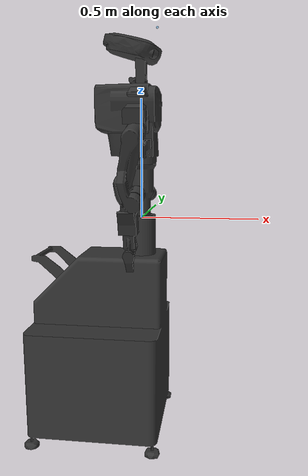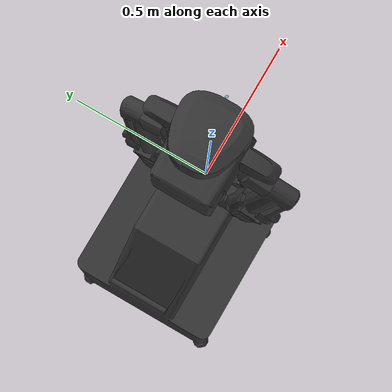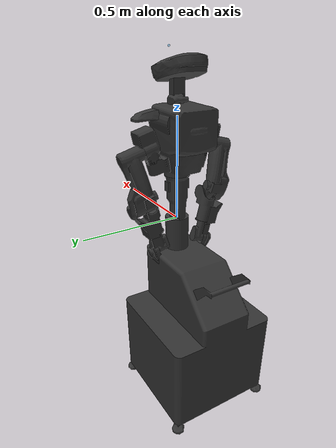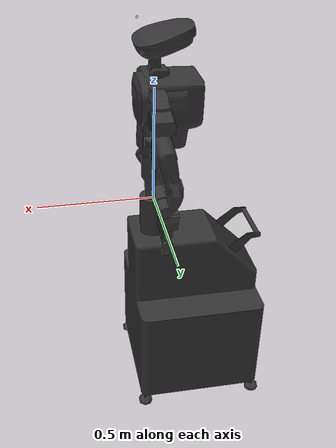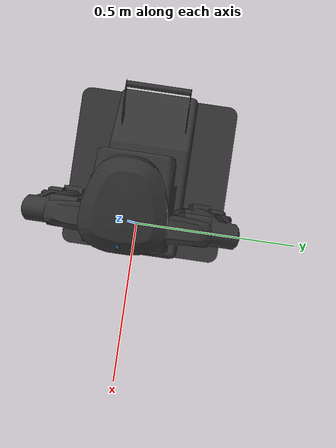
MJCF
<?xml version='1.0' encoding='UTF-8'?>
<mujoco model="NextageOpen">
  <compiler angle="radian" meshdir="meshes" autolimits="true"/>
  <option timestep="0.002" gravity="0 0 -9.81" integrator="implicitfast"/>
  <default>
    <joint limited="true" damping="0.2" armature="0.01"/>
    <geom rgba="0.25 0.25 0.25 1" friction="0.8 0.1 0.1" margin="0.001"/>
    <default class="visual">
      <geom contype="0" conaffinity="0" density="0" group="2" rgba="0.2 0.2 0.2 1"/>
    </default>
    <default class="collision">
      <geom group="3" rgba="0.7 0.7 0.7 0.15"/>
    </default>
  </default>
  <asset>
    <material name="body_white" rgba="0.95 0.95 0.95 1"/>
    <material name="body_black" rgba="0.08 0.08 0.08 1"/>
    <material name="body_gray" rgba="0.55 0.55 0.55 1"/>
    <material name="visor_cyan" rgba="0.49 1 1 1"/>
    <mesh name="CHEST_JOINT0_Link_mesh" file="CHEST_JOINT0_Link_mesh.stl"/>
    <mesh name="HEAD_JOINT0_Link_mesh" file="HEAD_JOINT0_Link_mesh.stl"/>
    <mesh name="HEAD_JOINT1_Link_mesh" file="HEAD_JOINT1_Link_mesh.stl"/>
    <mesh name="LARM_JOINT0_Link_mesh" file="LARM_JOINT0_Link_mesh.stl"/>
    <mesh name="LARM_JOINT1_Link_mesh" file="LARM_JOINT1_Link_mesh.stl"/>
    <mesh name="LARM_JOINT2_Link_mesh" file="LARM_JOINT2_Link_mesh.stl"/>
    <mesh name="LARM_JOINT3_Link_mesh" file="LARM_JOINT3_Link_mesh.stl"/>
    <mesh name="LARM_JOINT4_Link_mesh" file="LARM_JOINT4_Link_mesh.stl"/>
    <mesh name="RARM_JOINT0_Link_mesh" file="RARM_JOINT0_Link_mesh.stl"/>
    <mesh name="RARM_JOINT1_Link_mesh" file="RARM_JOINT1_Link_mesh.stl"/>
    <mesh name="RARM_JOINT2_Link_mesh" file="RARM_JOINT2_Link_mesh.stl"/>
    <mesh name="RARM_JOINT3_Link_mesh" file="RARM_JOINT3_Link_mesh.stl"/>
    <mesh name="RARM_JOINT4_Link_mesh" file="RARM_JOINT4_Link_mesh.stl"/>
    <mesh name="WAIST_Link_mesh" file="WAIST_Link_mesh.stl"/>
  </asset>
  <worldbody>
    <light pos="0 0 3" dir="0 0 -1" diffuse="1 1 1"/>
    <body name="WAIST">
      <inertial pos="0 0 0" mass="1000" fullinertia="20 20 20 0 0 0"/>
      <geom class="visual" material="body_white" type="mesh" mesh="WAIST_Link_mesh" pos="0 0 0.97" euler="0 -0 0"/>
      <geom class="collision" type="mesh" mesh="WAIST_Link_mesh" pos="0 0 0.97" euler="0 -0 0"/>
      <body name="CHEST_JOINT0_Link" pos="0 0 0" euler="0 -0 0">
        <joint type="hinge" name="CHEST_JOINT0" axis="0 0 1" damping="0.2" range="-2.84489 2.84489" actuatorfrcrange="-100 100"/>
        <inertial pos="0 0 0" mass="3.0" fullinertia="0.0639575 0.0310845 0.0501107 -0.00022833 0.00011172 6.48e-05"/>
        <geom class="visual" material="body_white" type="mesh" mesh="CHEST_JOINT0_Link_mesh" pos="0 0 0" euler="0 -0 0"/>
        <geom class="collision" type="mesh" mesh="CHEST_JOINT0_Link_mesh" pos="0 0 0" euler="0 -0 0"/>
        <body name="HEAD_JOINT0_Link" pos="0 0 0.5695" euler="0 -0 0">
          <joint type="hinge" name="HEAD_JOINT0" axis="0 0 1" damping="0.2" range="-1.22173 1.22173" actuatorfrcrange="-100 100"/>
          <inertial pos="-2.292e-05 0.00547848 -0.00784016" mass="0.317929" fullinertia="0.00027682 0.00013009 0.00020954 3e-08 -3.3e-07 -1.092e-05"/>
          <geom class="visual" material="body_white" type="mesh" mesh="HEAD_JOINT0_Link_mesh" pos="0 0 0.5695" euler="0 -0 0"/>
          <geom class="collision" type="mesh" mesh="HEAD_JOINT0_Link_mesh" pos="0 0 0.5695" euler="0 -0 0"/>
          <body name="HEAD_JOINT1_Link" pos="0 0 0" euler="0 -0 0">
            <joint type="hinge" name="HEAD_JOINT1" axis="0 1 0" damping="0.2" range="-0.349066 1.22173" actuatorfrcrange="-100 100"/>
            <inertial pos="0 0 0" mass="0.0808593" fullinertia="1e-3 1e-3 1e-3 0 0 0"/>
            <geom class="visual" material="body_white" type="mesh" mesh="HEAD_JOINT1_Link_mesh" pos="0 0 0" euler="0 -0 0"/>
            <geom class="collision" type="mesh" mesh="HEAD_JOINT1_Link_mesh" pos="0 0 0" euler="0 -0 0"/>
            <site name="l515_head_link" pos="0.067 0.001 0.210" euler="0.008 0.318 0.029" type="sphere" size="0.005" rgba="0.1 0.6 0.9 0.4"/>
          </body>
        </body>        <body name="LARM_JOINT0_Link" pos="0 0.145 0.370296" euler="-0.261799 0 0">
          <joint type="hinge" name="LARM_JOINT0" axis="0 0 1" damping="0.2" range="-1.53589 1.53589" actuatorfrcrange="-150 150"/>
          <inertial pos="-0.00226388 -0.00521383 0.0156081" mass="1.32626" fullinertia="0.00207537 0.00240295 0.00141912 0.00011276 8.927e-05 -4.57e-05"/>
          <geom class="visual" material="body_black" type="mesh" mesh="LARM_JOINT0_Link_mesh" pos="0 0.145 0.370296" euler="-0.261799 0 0"/>
          <geom class="collision" type="mesh" mesh="LARM_JOINT0_Link_mesh" pos="0 0.145 0.370296" euler="-0.261799 0 0"/>
          <body name="LARM_JOINT1_Link" pos="0 0 0" euler="0 -0 0">
            <joint type="hinge" name="LARM_JOINT1" axis="0 1 0" damping="0.2" range="-2.44346 1.0472" actuatorfrcrange="-200 200"/>
            <inertial pos="-5.236e-05 0.0583134 -0.107061" mass="1.14898" fullinertia="0.0154168 0.0147117 0.0012658 9.95417e-07 3.38147e-06 0.00213719"/>
            <geom class="visual" material="body_black" type="mesh" mesh="LARM_JOINT1_Link_mesh" pos="0 0 0" euler="0 -0 0"/>
            <geom class="collision" type="mesh" mesh="LARM_JOINT1_Link_mesh" pos="0 0 0" euler="0 -0 0"/>
            <body name="LARM_JOINT2_Link" pos="0 0.095 -0.25" euler="0 -0 0">
              <joint type="hinge" name="LARM_JOINT2" axis="0 1 0" damping="0.2" range="-2.75762 0" actuatorfrcrange="-100 100"/>
              <inertial pos="-2.254e-05 0.00167107 -0.0715116" mass="0.577518" fullinertia="0.00143966 0.00141763 0.0001972 -3e-07 1.2e-06 -7.596e-05"/>
              <geom class="visual" material="body_black" type="mesh" mesh="LARM_JOINT2_Link_mesh" pos="0 0.095 -0.25" euler="0 -0 0"/>
              <geom class="collision" type="mesh" mesh="LARM_JOINT2_Link_mesh" pos="0 0.095 -0.25" euler="0 -0 0"/>
              <body name="LARM_JOINT3_Link" pos="-0.03 0 0" euler="0 -0 0">
                <joint type="hinge" name="LARM_JOINT3" axis="0 0 1" damping="0.2" range="-1.8326 2.87979" actuatorfrcrange="-100 100"/>
                <inertial pos="-1.788e-05 -0.00395812 -0.20273" mass="0.457418" fullinertia="0.00069205 0.00068903 0.00013509 3e-08 5.2e-07 -1.915e-05"/>
                <geom class="visual" material="body_black" type="mesh" mesh="LARM_JOINT3_Link_mesh" pos="-0.03 0 0" euler="0 -0 0"/>
                <geom class="collision" type="mesh" mesh="LARM_JOINT3_Link_mesh" pos="-0.03 0 0" euler="0 -0 0"/>
                <body name="LARM_JOINT4_Link" pos="0 0 -0.235" euler="0 -0 0">
                  <joint type="hinge" name="LARM_JOINT4" axis="0 1 0" damping="0.2" range="-1.74533 1.74533" actuatorfrcrange="-100 100"/>
                  <inertial pos="0.00243131 0.00379733 -0.0577036" mass="0.418434" fullinertia="0.00052016 0.00050569 0.00014004 1.69e-06 7.9e-06 -5.377e-05"/>
                  <geom class="visual" material="body_black" type="mesh" mesh="LARM_JOINT4_Link_mesh" pos="0 0 -0.235" euler="0 -0 0"/>
                  <geom class="collision" type="mesh" mesh="LARM_JOINT4_Link_mesh" pos="0 0 -0.235" euler="0 -0 0"/>
                  <body name="LARM_JOINT5_Link" pos="-0.047 0 -0.09" euler="0 -0 0">
                    <joint type="hinge" name="LARM_JOINT5" axis="1 0 0" damping="0.2" range="-2.84489 2.84489" actuatorfrcrange="-100 100"/>
                    <inertial pos="-0.048476 -3.2e-06 -0.0388988" mass="1.05156" fullinertia="0.00194072 0.00209392 0.00035788 1.1e-07 -0.00042482 1.2e-07"/>
                  </body>
                </body>
              </body>
            </body>
          </body>
        </body>
        <body name="RARM_JOINT0_Link" pos="0 -0.145 0.370296" euler="0.261799 -0 0">
          <joint type="hinge" name="RARM_JOINT0" axis="0 0 1" damping="0.2" range="-1.53589 1.53589" actuatorfrcrange="-150 150"/>
          <inertial pos="-0.00226388 0.00521383 0.0156081" mass="1.32626" fullinertia="0.00207537 0.00240295 0.00141912 -0.00011276 8.927e-05 4.57e-05"/>
          <geom class="visual" material="body_black" type="mesh" mesh="RARM_JOINT0_Link_mesh" pos="0 -0.145 0.370296" euler="0.261799 -0 0"/>
          <geom class="collision" type="mesh" mesh="RARM_JOINT0_Link_mesh" pos="0 -0.145 0.370296" euler="0.261799 -0 0"/>
          <body name="RARM_JOINT1_Link" pos="0 0 0" euler="0 -0 0">
            <joint type="hinge" name="RARM_JOINT1" axis="0 1 0" damping="0.2" range="-2.44346 1.0472" actuatorfrcrange="-200 200"/>
            <inertial pos="-5.236e-05 -0.0583134 -0.107061" mass="1.14898" fullinertia="0.0154168 0.0147117 0.0012658 -9.95417e-07 3.38147e-06 -0.00213719"/>
            <geom class="visual" material="body_black" type="mesh" mesh="RARM_JOINT1_Link_mesh" pos="0 0 0" euler="0 -0 0"/>
            <geom class="collision" type="mesh" mesh="RARM_JOINT1_Link_mesh" pos="0 0 0" euler="0 -0 0"/>
            <body name="RARM_JOINT2_Link" pos="0 -0.095 -0.25" euler="0 -0 0">
              <joint type="hinge" name="RARM_JOINT2" axis="0 1 0" damping="0.2" range="-2.75762 0" actuatorfrcrange="-100 100"/>
              <inertial pos="-2.254e-05 -0.00167107 -0.0715116" mass="0.577518" fullinertia="0.00143966 0.00141763 0.0001972 3e-07 1.2e-06 7.596e-05"/>
              <geom class="visual" material="body_black" type="mesh" mesh="RARM_JOINT2_Link_mesh" pos="0 -0.095 -0.25" euler="0 -0 0"/>
              <geom class="collision" type="mesh" mesh="RARM_JOINT2_Link_mesh" pos="0 -0.095 -0.25" euler="0 -0 0"/>
              <body name="RARM_JOINT3_Link" pos="-0.03 0 0" euler="0 -0 0">
                <joint type="hinge" name="RARM_JOINT3" axis="0 0 1" damping="0.2" range="-2.87979 1.8326" actuatorfrcrange="-100 100"/>
                <inertial pos="-1.788e-05 0.00395812 -0.20273" mass="0.457418" fullinertia="0.00069205 0.00068903 0.00013509 -3e-08 5.2e-07 1.915e-05"/>
                <geom class="visual" material="body_black" type="mesh" mesh="RARM_JOINT3_Link_mesh" pos="-0.03 0 0" euler="0 -0 0"/>
                <geom class="collision" type="mesh" mesh="RARM_JOINT3_Link_mesh" pos="-0.03 0 0" euler="0 -0 0"/>
                <body name="RARM_JOINT4_Link" pos="0 0 -0.235" euler="0 -0 0">
                  <joint type="hinge" name="RARM_JOINT4" axis="0 1 0" damping="0.2" range="-1.74533 1.74533" actuatorfrcrange="-100 100"/>
                  <inertial pos="0.00243131 -0.00379733 -0.0577036" mass="0.418434" fullinertia="0.00052016 0.00050569 0.00014004 -1.69e-06 7.9e-06 5.377e-05"/>
                  <geom class="visual" material="body_black" type="mesh" mesh="RARM_JOINT4_Link_mesh" pos="0 0 -0.235" euler="0 -0 0"/>
                  <geom class="collision" type="mesh" mesh="RARM_JOINT4_Link_mesh" pos="0 0 -0.235" euler="0 -0 0"/>
                  <body name="RARM_JOINT5_Link" pos="-0.047 0 -0.09" euler="0 -0 0">
                    <joint type="hinge" name="RARM_JOINT5" axis="1 0 0" damping="0.2" range="-2.84489 2.84489" actuatorfrcrange="-100 100"/>
                    <inertial pos="-0.048476 3.2e-06 -0.0388988" mass="1.05156" fullinertia="0.00194072 0.00209392 0.00035788 -1.1e-07 -0.00042482 -1.2e-07"/>
                  </body>
                </body>
              </body>
            </body>
          </body>
        </body>
      </body>
    </body>
  </worldbody>
  <actuator>
    <motor name="CHEST_JOINT0_motor" joint="CHEST_JOINT0" gear="1" ctrlrange="-100 100" ctrllimited="true"/>
    <motor name="HEAD_JOINT0_motor" joint="HEAD_JOINT0" gear="1" ctrlrange="-100 100" ctrllimited="true"/>
    <motor name="HEAD_JOINT1_motor" joint="HEAD_JOINT1" gear="1" ctrlrange="-100 100" ctrllimited="true"/>
    <motor name="LARM_JOINT0_motor" joint="LARM_JOINT0" gear="1" ctrlrange="-150 150" ctrllimited="true"/>
    <motor name="LARM_JOINT1_motor" joint="LARM_JOINT1" gear="1" ctrlrange="-200 200" ctrllimited="true"/>
    <motor name="LARM_JOINT2_motor" joint="LARM_JOINT2" gear="1" ctrlrange="-100 100" ctrllimited="true"/>
    <motor name="LARM_JOINT3_motor" joint="LARM_JOINT3" gear="1" ctrlrange="-100 100" ctrllimited="true"/>
    <motor name="LARM_JOINT4_motor" joint="LARM_JOINT4" gear="1" ctrlrange="-100 100" ctrllimited="true"/>
    <motor name="LARM_JOINT5_motor" joint="LARM_JOINT5" gear="1" ctrlrange="-100 100" ctrllimited="true"/>
    <motor name="RARM_JOINT0_motor" joint="RARM_JOINT0" gear="1" ctrlrange="-150 150" ctrllimited="true"/>
    <motor name="RARM_JOINT1_motor" joint="RARM_JOINT1" gear="1" ctrlrange="-200 200" ctrllimited="true"/>
    <motor name="RARM_JOINT2_motor" joint="RARM_JOINT2" gear="1" ctrlrange="-100 100" ctrllimited="true"/>
    <motor name="RARM_JOINT3_motor" joint="RARM_JOINT3" gear="1" ctrlrange="-100 100" ctrllimited="true"/>
    <motor name="RARM_JOINT4_motor" joint="RARM_JOINT4" gear="1" ctrlrange="-100 100" ctrllimited="true"/>
    <motor name="RARM_JOINT5_motor" joint="RARM_JOINT5" gear="1" ctrlrange="-100 100" ctrllimited="true"/>
  </actuator>
  <keyframe>
    <key name="home" qpos="0 0 0 0 0 0 0 0 0 0 0 0 0 0 0"/>
  </keyframe>
</mujoco>
